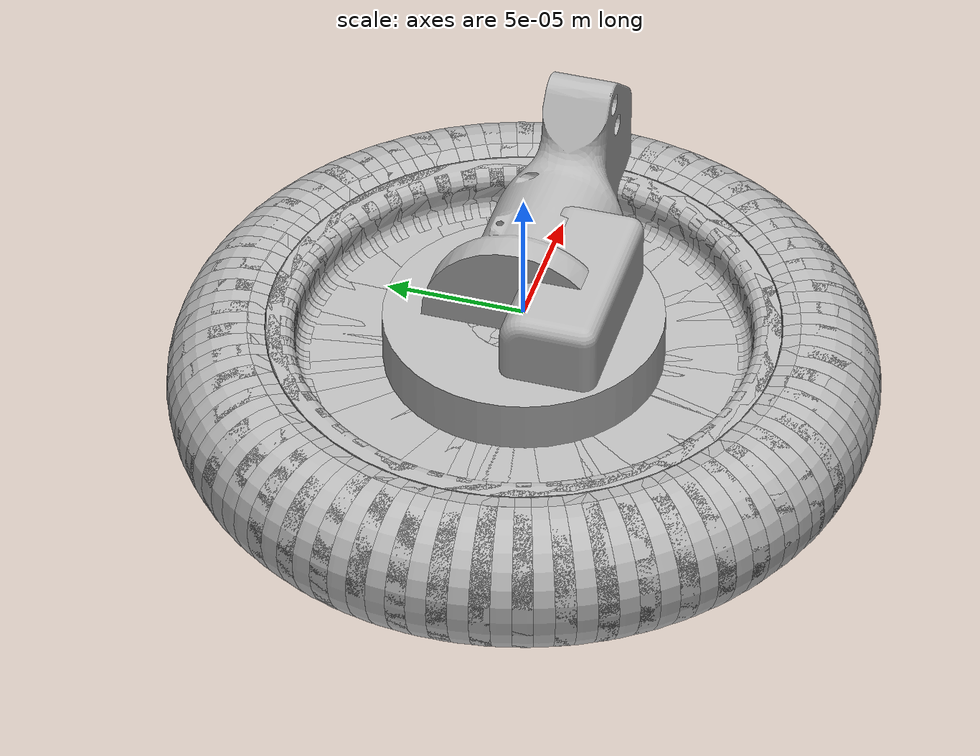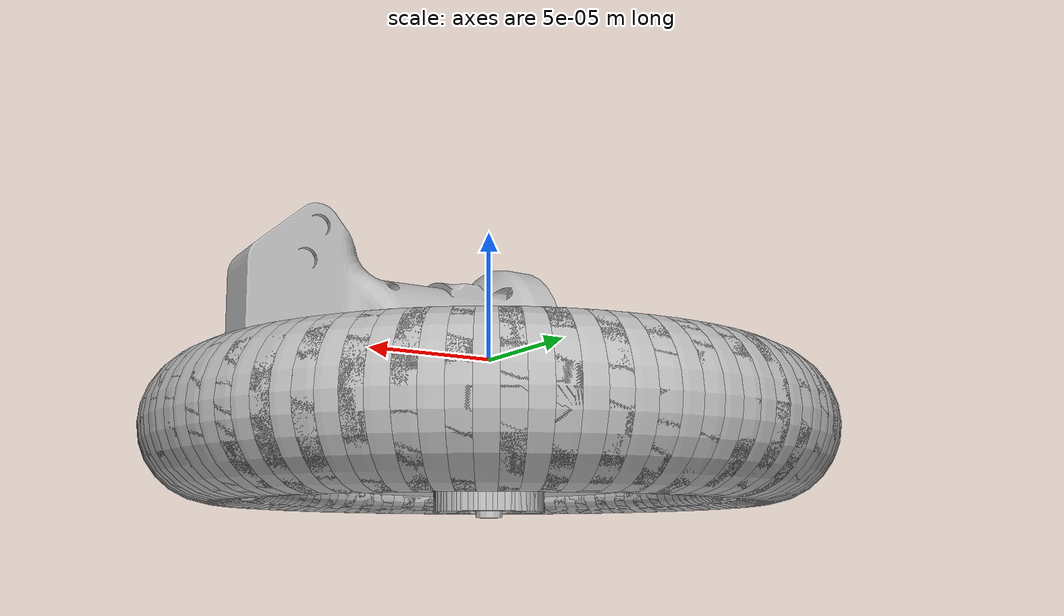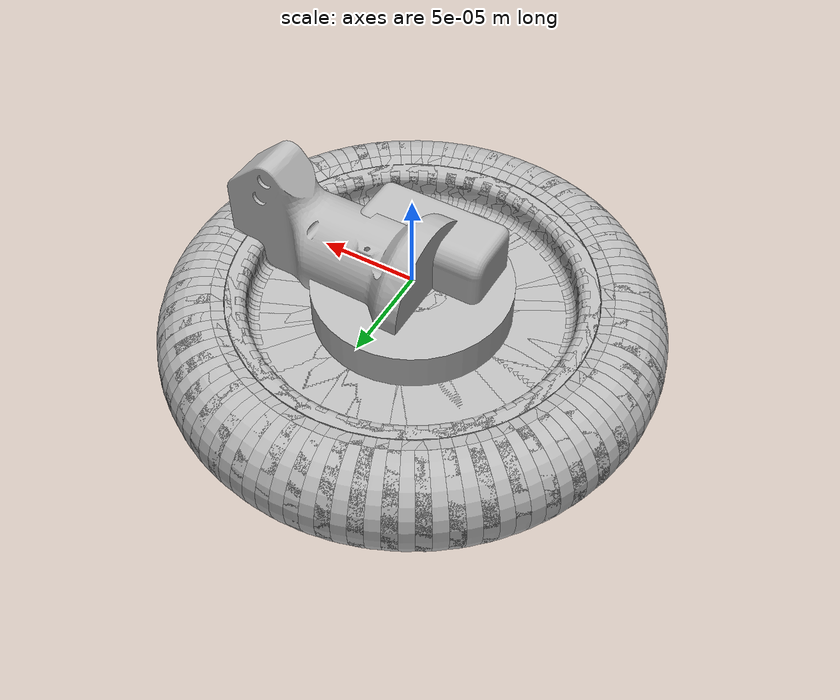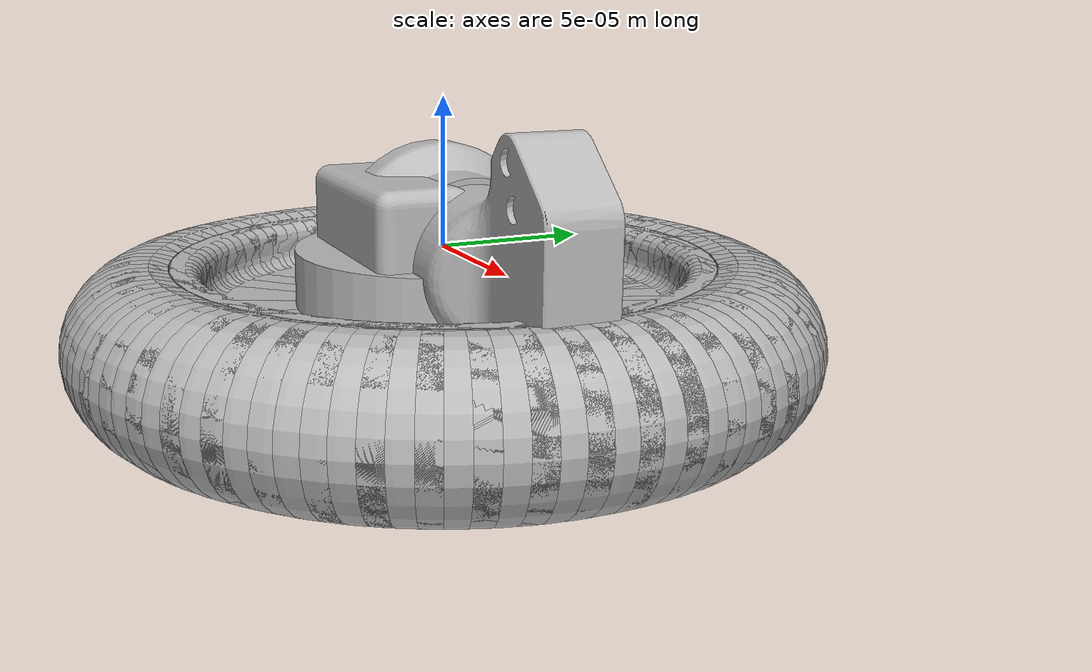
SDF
<?xml version="1.0"?>
<sdf version="1.6">
	<model name="my_bot">
      <pose>0.0 0.0 0.0 0.0 0.0 0.0</pose>

      <link name="base_footprint"/>

	  <link name="base_link">
	    <inertial>
			<pose>0.0110814300591425 -1.07283050729823E-05 0.17657272751503 0 0 0</pose>
			<mass>13.4817350958382</mass>
			<inertia>
				<ixx>0.314898837628642</ixx>
				<ixy>-1.83915405182082E-05</ixy>
				<ixz>9.71911553669445E-05</ixz>
				<iyy>0.27110302696631</iyy>
				<iyz>-2.51545485645537E-07</iyz>
				<izz>0.545868688934175</izz>
			</inertia>
	    </inertial>
	    <visual name="base_visual">
	      	<pose>0.0 0.0 0.0 0.0 0.0 0.0</pose>
	      	<geometry>
		 		<mesh>
		  			<uri>model://robot/meshes/base_link.STL</uri>
            		<scale>0.001 0.001 0.001</scale>
				</mesh>
	      	</geometry>
	    </visual>
	    <collision name="base_collision">
	       	<pose>0 0 0 0 0 0</pose>
	      	<geometry>
				<mesh>
					<uri>model://robot/meshes/base_link.STL</uri>
					<scale>0.001 0.001 0.001</scale>
				</mesh>
	      	</geometry>
	    </collision>
	  </link>
	  <link name="front_left_wheel">
	    <inertial>
	      	<pose>3.83026943495679E-15 -1.13145603997111E-13 -0.0289999999999808 0 0 0</pose>
			<mass>1.76533942503771</mass>
			<inertia>
				<ixx>0.00818088481028512</ixx>
				<ixy>1.17455235352596E-18</ixy>
				<ixz>5.62382982653917E-20</ixz>
				<iyy>0.00818088481028512</iyy>
				<iyz>2.65575231975444E-17</iyz>
				<izz>0.0158038579869233</izz>
			</inertia>
	    </inertial>
	    <visual name="front_left_wheel_visual">
	       <pose>0.0 0.0 0.0 0.0 0.0 0.0</pose>
	      	<geometry>
				<mesh>
					<uri>model://robot/meshes/front_left_wheel.STL </uri>
					<scale>0.001 0.001 0.001</scale>
				</mesh>
	      	</geometry>
	    </visual>
	    <collision name="front_left_wheel_collision">
	       	<pose>0.0 0.0 0.0 0.0 0.0 0.0</pose>
	      	<geometry>
				<mesh>
					<uri>model://robot/meshes/front_left_wheel.STL </uri>
					<scale>0.001 0.001 0.001</scale>
				</mesh>
	     	 </geometry>
			 <surface>
            <!-- This friction pamareter don't contain reliable data!! -->
            <friction>
              <ode>
                <mu>100000.0</mu>
                <mu2>100000.0</mu2>
                <fdir1>0 0 0</fdir1>
                <slip1>0.0</slip1>
                <slip2>0.0</slip2>
              </ode>
            </friction>
            <contact>
              <ode>
                <soft_cfm>0</soft_cfm>
                <soft_erp>0.2</soft_erp>
                <kp>1e+5</kp>
                <kd>1</kd>
                <max_vel>0.01</max_vel>
                <min_depth>0.001</min_depth>
              </ode>
            </contact>
          </surface>
	    </collision>
	  </link>
	  <joint name="front_left_wheel_joint" type="revolute">
	     	<pose>0.18566 0.37 0.0505 -1.5708 0.0 0.0</pose>
	    	<parent>base_link</parent>
		  	<child>front_left_wheel</child>

			<limit
			effort="1"
			velocity="1" />
	  </joint>
	  <link name="front_right_wheel">
	    <inertial>
	       	<pose>0.0 -5.55111512312578E-17 -0.029 0.0 0.0 0.0</pose>

			<mass>1.76533942503771</mass>
			<inertia>
				<ixx>0.00818088481028511</ixx>
				<ixy>1.55583818346496E-18</ixy>
				<ixz>-1.57805560009028E-20</ixz>
				<iyy>0.00818088481028511</iyy>
				<iyz>2.76541224531879E-17</iyz>
				<izz>0.0158038579869233</izz>
			</inertia>
	    </inertial>
	    <visual name="front_right_wheel_visual">
	      	<pose>0.0 0.0 0.0 0.0 0.0 0.0</pose>
	      	<geometry>
				<mesh>
					<uri>model://robot/meshes/front_right_wheel.STL</uri>
					<scale>0.001 0.001 0.001</scale>
				</mesh>
	      	</geometry>
	    </visual>
	    <collision name="front_right_wheel_collision">
	     	<pose>0.0 0.0 0.0 0.0 0.0 0.0</pose>
			<geometry>
				<mesh>
					<uri>model://robot/meshes/front_right_wheel.STL</uri>
					<scale>0.001 0.001 0.001</scale>
				</mesh>
			</geometry>
			<surface>
            <!-- This friction pamareter don't contain reliable data!! -->
            <friction>
              <ode>
                <mu>100000.0</mu>
                <mu2>100000.0</mu2>
                <fdir1>0 0 0</fdir1>
                <slip1>0.0</slip1>
                <slip2>0.0</slip2>
              </ode>
            </friction>
            <contact>
              <ode>
                <soft_cfm>0</soft_cfm>
                <soft_erp>0.2</soft_erp>
                <kp>1e+5</kp>
                <kd>1</kd>
                <max_vel>0.01</max_vel>
                <min_depth>0.001</min_depth>
              </ode>
            </contact>
          </surface>
	    </collision>
	  </link>
	  <joint name="front_right_wheel_joint" type="revolute">
	    	<pose>0.18566 -0.37 0.0505 1.5708 0.0 0.0</pose>
	   	 	<parent>base_link</parent>
			<child>front_right_wheel</child>
			<axis>
				<xyz>0 0 -1</xyz>
			</axis>
			<limit
			effort="1"
			velocity="1" />
	  </joint>
	  <link name="back_right_wheel">
	    <inertial>
			<pose>2.77555756156289E-17 -1.2490009027033E-16 -0.029 0.0 0.0 0.0</pose>
			<mass>1.76533942503771</mass>
			<inertia>
				<ixx>0.00818088481028511</ixx>
				<ixy>-8.31221665572215E-19</ixy>
				<ixz>-1.63529138250933E-19</ixz>
				<iyy>0.00818088481028511</iyy>
				<iyz>5.33492516736472E-17</iyz>
				<izz>0.0158038579869233</izz>
          	</inertia>
	    </inertial>
	    <visual name="back_right_wheel_visual">
			<pose>0.0 0.0 0.0 0.0 0.0 0.0</pose>
			<geometry>
				<mesh>
					<uri>model://robot/meshes/back_right_wheel.STL </uri>
					<scale>0.001 0.001 0.001</scale>
				</mesh>
			</geometry>
	    </visual>
	    <collision name="back_right_wheel_collision">
			<pose>0.0 0.0 0.0 0.0 0.0 0.0</pose>
			<geometry>
				<mesh>
					<uri>model://robot/meshes/back_right_wheel.STL </uri>
					<scale>0.001 0.001 0.001</scale>
				</mesh>
			</geometry>
			<surface>
            <!-- This friction pamareter don't contain reliable data!! -->
            <friction>
              <ode>
                <mu>100000.0</mu>
                <mu2>100000.0</mu2>
                <fdir1>0 0 0</fdir1>
                <slip1>0.0</slip1>
                <slip2>0.0</slip2>
              </ode>
            </friction>
            <contact>
              <ode>
                <soft_cfm>0</soft_cfm>
                <soft_erp>0.2</soft_erp>
                <kp>1e+5</kp>
                <kd>1</kd>
                <max_vel>0.01</max_vel>
                <min_depth>0.001</min_depth>
              </ode>
            </contact>
          </surface>
	    </collision>
	  </link>
	  <joint name="back_right_wheel_joint" type="revolute">
			<pose>-0.18566 -0.37 0.0505 1.5708 0.0 0.0</pose>
			<parent>base_link</parent>
			<child>back_right_wheel</child>
			<axis>
				<xyz>0 0 -1</xyz>
			</axis>
			<limit
			effort="1"
			velocity="1" />
	  </joint>
	  <link name="back_left_wheel">
	    <inertial>
	      	<pose>-2.77555756156289E-17 -1.11022302462516E-16 -0.0289999999999999 0.0 0.0 0.0</pose>
			<mass>1.76533942503771</mass>
			<inertia>
				<ixx>0.00818088481028512</ixx>
				<ixy>8.31221665572211E-19</ixy>
				<ixz>1.55058808778393E-19</ixz>
				<iyy>0.00818088481028512</iyy>
				<iyz>2.65575231975444E-17</iyz>
				<izz>0.0158038579869233</izz>
			</inertia>
	    </inertial>
	    <visual name="back_left_wheel_visual">
			<pose>0.0 0.0 0.0 0.0 0.0 0.0</pose>
			<geometry>
				<mesh>
					<uri>model://robot/meshes/back_left_wheel.STL</uri>
					<scale>0.001 0.001 0.001</scale>
				</mesh>
			</geometry>
	    </visual>
	    <collision name="back_left_wheel_collision">
			<pose>0.0 0.0 0.0 0.0 0.0 0.0</pose>
			<geometry>
				<mesh>
					<uri>model://robot/meshes/back_left_wheel.STL </uri>
					<scale>0.001 0.001 0.001</scale>
				</mesh>
			</geometry>
			<surface>
            <!-- This friction pamareter don't contain reliable data!! -->
            <friction>
              <ode>
                <mu>100000.0</mu>
                <mu2>100000.0</mu2>
                <fdir1>0 0 0</fdir1>
                <slip1>0.0</slip1>
                <slip2>0.0</slip2>
              </ode>
            </friction>
            <contact>
              <ode>
                <soft_cfm>0</soft_cfm>
                <soft_erp>0.2</soft_erp>
                <kp>1e+5</kp>
                <kd>1</kd>
                <max_vel>0.01</max_vel>
                <min_depth>0.001</min_depth>
              </ode>
            </contact>
          </surface>
	    </collision>
	  </link>
	  <joint name="back_left_wheel_joint" type="revolute">
			<pose>-0.18566 0.37 0.0505 0.0 0.0 0.0</pose>
			<parent>base_link</parent>
			<child>back_left_wheel</child>
			<axis>
				<xyz>0 0 -1</xyz>
			</axis>
			<limit
			effort="1"
			velocity="1" />
	  </joint>
	  <link name="laser_frame">
	    <inertial>
			<pose>0.0 0.0 -0.023086642599278 0.0 0.0 0.0</pose>
			<mass>0.221906397086315</mass>
			<inertia>
				<ixx>0.000242495228227766</ixx>
				<ixy>4.65303363426644E-21</ixy>
				<ixz>-3.20040229450624E-20</ixz>
				<iyy>0.000242495228227766</iyy>
				<iyz>6.92322839032914E-22</iyz>
				<izz>0.000357143125094018</izz>
			</inertia>
	    </inertial>
	    <visual name="lidar_sensor_visual">
			<pose>0.0 0.0 0.0 0.0 0.0 0.0 </pose>
			<geometry>
				<mesh>
					<uri>model://robot/meshes/laser_frame.STL </uri>
					<scale>0.001 0.001 0.001</scale>
				</mesh>
			</geometry>
	    </visual>
	    <collision name="lidar_sensor_collision">
			<pose>0.0 0.0 0.0 0.0 0.0 0.0</pose>
			<geometry>
				<mesh>
					<uri>model://robot/meshes/laser_frame.STL</uri>
					<scale>0.001 0.001 0.001</scale>
				</mesh>
			</geometry>
	    </collision>
		<sensor name="hls_lfcd_lds" type="ray">
          <always_on>true</always_on>
          <visualize>false</visualize>
          <pose>-0.064 0 0.15 0 0 0</pose>
          <update_rate>5</update_rate>
          <ray>
            <scan>
              <horizontal>
                <samples>360</samples>
                <resolution>1.000000</resolution>
                <min_angle>0.000000</min_angle>
                <max_angle>6.280000</max_angle>
              </horizontal>
            </scan>
            <range>
              <min>0.00000</min>
              <max>20.0</max>
              <resolution>0.015000</resolution>
            </range>
            <noise>
              <type>gaussian</type>
              <mean>0.0</mean>
              <stddev>0.01</stddev>
            </noise>
          </ray>
          <plugin name="turtlebot3_laserscan" filename="libgazebo_ros_ray_sensor.so">
            <ros>
                <remapping>~/out:=scan</remapping>
            </ros>
            <output_type>sensor_msgs/LaserScan</output_type>
            <frame_name>laser_frame</frame_name>
          </plugin>
        </sensor>
	  </link>
	  <joint name="laser_joint"
	    type="fixed">
	    <pose>0.0 0.0 0.338 0.0 0.0 0.0</pose>
	    <parent>base_link</parent>
		<child>laser_frame</child>
	    <axis>
	      <xyz>0 0 0</xyz>
        </axis>
	  </joint>

	  <link name="rtk">
	    <inertial>
			<pose>-6.93889390390723E-18 -0.0177792493500667 1.38777878078145E-17 0.0 0.0 0.0</pose>
			<mass>0.125333177215754</mass>
			<inertia>
				<ixx>3.66776232929053E-05</ixx>
				<ixy>-8.99775104438633E-22</ixy>
				<ixz>8.49774290725455E-21</ixz>
				<iyy>7.45130452436299E-05</iyy>
				<iyz>-2.84702837671062E-21</iyz>
				<izz>6.19722649600281E-05</izz>
			</inertia>
	    </inertial>
	    <visual name="rtk_visual">
			<pose>0.0 0.0 0.0 0.0 0.0 0.0</pose>
			<geometry>
				<mesh>
					<uri>model://robot/meshes/rtk.STL </uri>
					<scale>0.001 0.001 0.001</scale>
				</mesh>
			</geometry>
	    </visual>
	    <collision name="rtk_collision">
			<pose>0.0 0.0 0.0 0.0 0.0 0.0</pose>
			<geometry>
				<mesh>
					<uri>model://robot/meshes/rtk.STL</uri>
					<scale>0.001 0.001 0.001</scale>
				</mesh>
			</geometry>
	    </collision>
	  </link>
	  <joint name="rtk_joint" type="fixed">
	    <pose>0.0 0.335 0.193 0.0 0.0 0.0</pose>
	    <parent>base_link</parent>
		<child>rtk</child>
	    <axis>
	      <xyz>0 0 0</xyz>
        </axis>
	  </joint>
	  <plugin name="turtlebot3_joint_state" filename="libgazebo_ros_joint_state_publisher.so">
        <ros>
            <remapping>~/out:=joint_states</remapping>
        </ros>
        <update_rate>30</update_rate>
		<joint_name>front_left_wheel_joint</joint_name>
        <joint_name>front_right_wheel_joint</joint_name>
        <joint_name>back_left_wheel_joint</joint_name>
        <joint_name>back_right_wheel_joint</joint_name>

      </plugin>
	  <plugin name="skid_steer_drive" filename="libgazebo_ros_diff_drive.so">
         <ros>
          <!-- Set namespace -->

          <!-- Remap default topics -->
          <remapping>cmd_vel:=cmd_vel</remapping>
          <remapping>odom:=odom_demo1</remapping>
		  <remapping>/tf:=tf</remapping>
        </ros>

         <updateRate>100.0</updateRate>
         <robotNamespace>/</robotNamespace>

         <num_wheel_pairs>2</num_wheel_pairs>

         <left_joint>front_left_wheel_joint</left_joint>
         <right_joint>front_right_wheel_joint</right_joint>
         <left_joint>back_left_wheel_joint</left_joint>
         <right_joint>back_right_wheel_joint</right_joint>

         <wheel_separation>0.730</wheel_separation>
         <wheel_separation>0.730</wheel_separation>

         <wheel_diameter>0.25</wheel_diameter>
         <wheel_diameter>0.25</wheel_diameter>

         <max_wheel_torque>5</max_wheel_torque>
         <max_wheel_acceleration>1.0</max_wheel_acceleration>

        <!-- output -->
        <!-- The odom -> base link transform is published by the ekf in robot localization -->
        <publish_odom>true</publish_odom>
        <publish_odom_tf>false</publish_odom_tf>
        <publish_wheel_tf>false</publish_wheel_tf>

        <odometry_topic>odom</odometry_topic>
        <odometry_frame>odom_demo</odometry_frame>
        <robot_base_frame>base_link</robot_base_frame>

      </plugin>

    </model>
</sdf>
